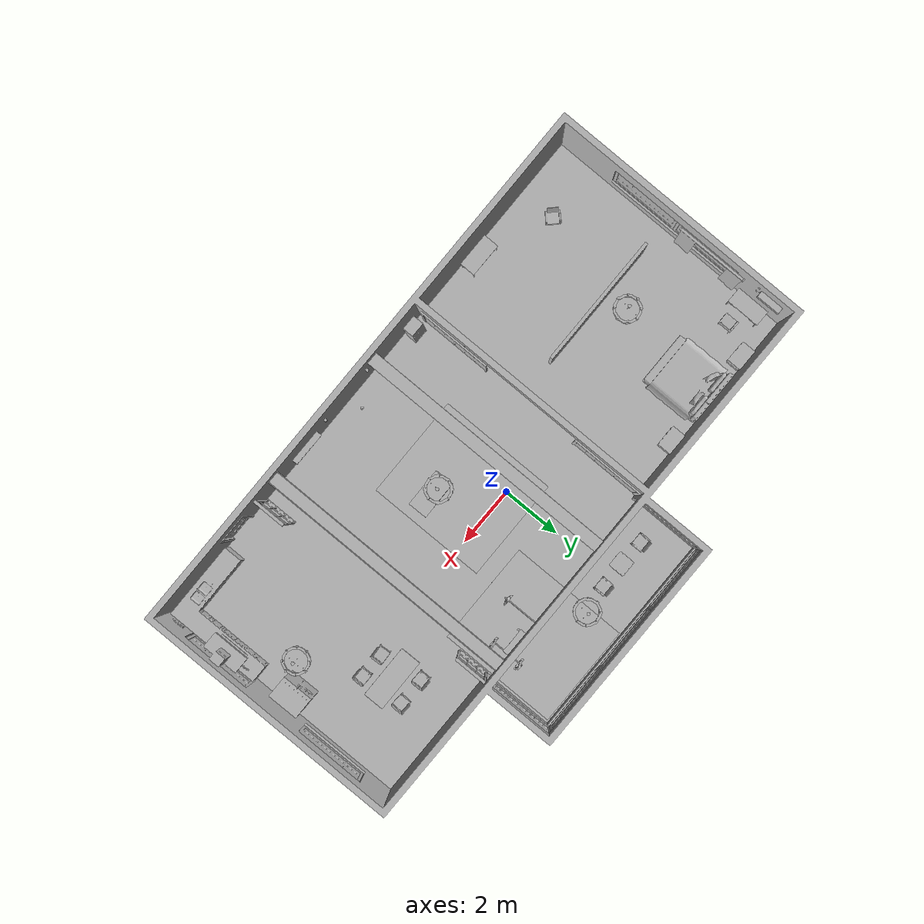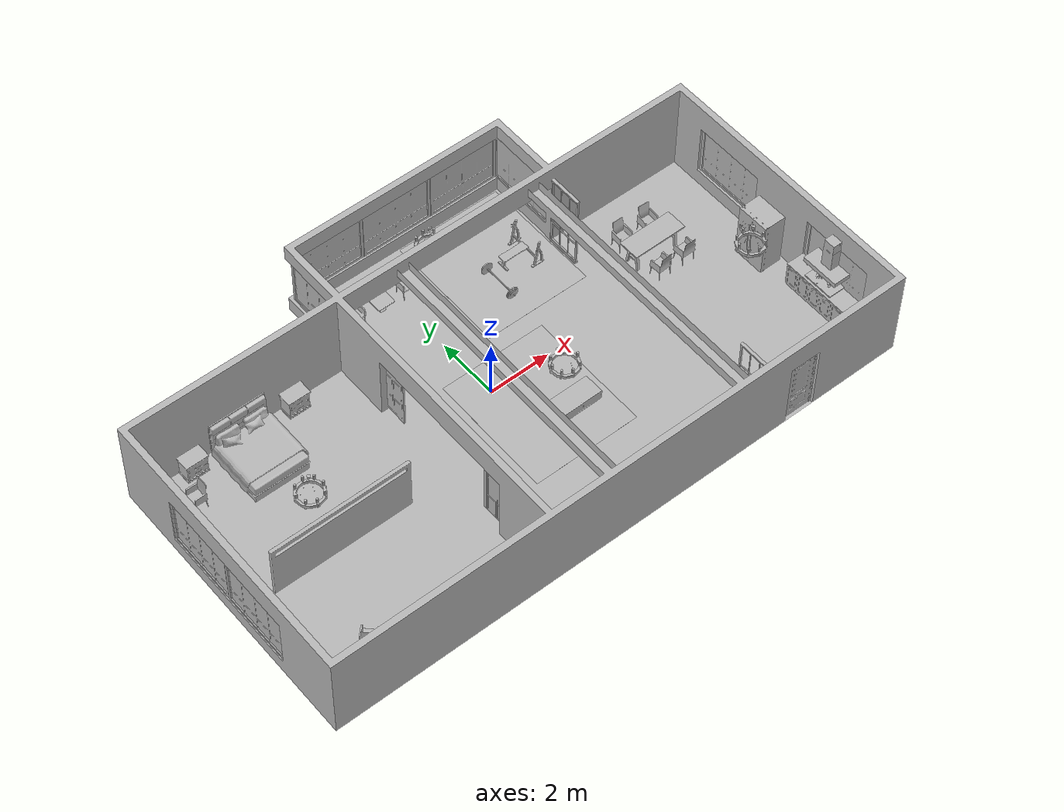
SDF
<sdf version="1.6">
 <world name="default">
  <gravity>0 0 -9.8</gravity>
  <magnetic_field>6e-06 2.3e-05 -4.2e-05</magnetic_field>
  <atmosphere type="adiabatic"/>
  <physics name="default_physics" default="0" type="ode">
   <max_step_size>0.001</max_step_size>
   <real_time_factor>1</real_time_factor>
   <real_time_update_rate>1000</real_time_update_rate>
  </physics>
  <scene>
   <ambient>0.4 0.4 0.4 1</ambient>
   <background>0.7 0.7 0.7 1</background>
   <shadows>0</shadows>
   <grid>0</grid>
   <origin_visual>0</origin_visual>
  </scene>
  <spherical_coordinates>
   <surface_model>EARTH_WGS84</surface_model>
   <latitude_deg>0</latitude_deg>
   <longitude_deg>0</longitude_deg>
   <elevation>0</elevation>
   <heading_deg>0</heading_deg>
  </spherical_coordinates>
  <model name="AirconditionerA_01_001">
   <static>1</static>
   <link name="AirconditionerA_01::link">
    <inertial><mass>1</mass></inertial>
    <collision name="collision">
     <geometry>
      <mesh><uri>model://AirconditionerA_01/meshes/AirconditionerA_01_collision.DAE</uri><scale>1 1 1</scale></mesh>
     </geometry>
    </collision>
    <visual name="visual">
     <geometry><mesh><uri>model://AirconditionerA_01/meshes/AirconditionerA_01_visual.DAE</uri></mesh></geometry>
     <meta><layer>1</layer></meta>
    </visual>
   </link>
   <static>1</static>
   <pose>-9.19941 2.41123 2.08454 0 -0 0</pose>
  </model>
  <model name="AirconditionerB_01_001">
   <static>1</static>
   <link name="AirconditionerB_01::link">
    <inertial><mass>1</mass></inertial>
    <collision name="collision">
     <geometry>
      <mesh><uri>model://AirconditionerB_01/meshes/AirconditionerB_01_collision.DAE</uri><scale>1 1 1</scale></mesh>
     </geometry>
    </collision>
    <visual name="visual">
     <geometry><mesh><uri>model://AirconditionerB_01/meshes/AirconditionerB_01_visual.DAE</uri></mesh></geometry>
     <meta><layer>1</layer></meta>
    </visual>
   </link>
   <pose>-2.00466 -5.22661 0.003485 0 -0 0</pose>
  </model>
  <model name="Bed_01_001">
   <static>1</static>
   <link name="Bed_01::link">
    <inertial><mass>22.6</mass></inertial>
    <collision name="collision">
     <geometry><mesh><uri>model://Bed_01/meshes/Bed_01_collision.DAE</uri><scale>1 1 1</scale></mesh></geometry>
    </collision>
    <visual name="visual">
     <geometry><mesh><uri>model://Bed_01/meshes/Bed_01_visual.DAE</uri></mesh></geometry>
     <meta><layer>1</layer></meta>
    </visual>
   </link>
   <static>1</static>
   <pose>-6.16507 2.03056 -1e-05 0 -0 0</pose>
  </model>
  <model name="NightStand_01_001">
   <static>1</static>
   <link name="NightStand_01::link">
    <inertial>
     <mass>13.6</mass>
     <inertia><ixx>0.6165</ixx><ixy>0</ixy><ixz>0</ixz><iyy>1.29664</iyy><iyz>0</iyz><izz>0.7706</izz></inertia>
    </inertial>
    <collision name="collision">
     <geometry>
      <mesh><uri>model://NightStand_01/meshes/NightStand_01_collision.DAE</uri><scale>1 1 1</scale></mesh>
     </geometry>
    </collision>
    <visual name="visual">
     <geometry><mesh><uri>model://NightStand_01/meshes/NightStand_01_visual.DAE</uri></mesh></geometry>
     <meta><layer>1</layer></meta>
    </visual>
   </link>
   <static>1</static>
   <pose>-7.72551 2.86042 0.005258 -2e-06 0 0</pose>
  </model>
  <model name="NightStand_01_002">
   <static>1</static>
   <link name="NightStand_01::link">
    <inertial>
     <mass>13.6</mass>
     <inertia><ixx>0.6165</ixx><ixy>0</ixy><ixz>0</ixz><iyy>1.29664</iyy><iyz>0</iyz><izz>0.7706</izz></inertia>
    </inertial>
    <collision name="collision">
     <geometry>
      <mesh><uri>model://NightStand_01/meshes/NightStand_01_collision.DAE</uri><scale>1 1 1</scale></mesh>
     </geometry>
    </collision>
    <visual name="visual">
     <geometry><mesh><uri>model://NightStand_01/meshes/NightStand_01_visual.DAE</uri></mesh></geometry>
     <meta><layer>1</layer></meta>
    </visual>
   </link>
   <static>1</static>
   <pose>-4.40734 2.86042 0.005256 0 2e-06 0</pose>
  </model>
  <model name="Board_01_001">
   <static>1</static>
   <link name="Board_01::link">
    <inertial><mass>1</mass></inertial>
    <collision name="collision">
     <geometry>
      <mesh><uri>model://Board_01/meshes/Board_01_collision.DAE</uri><scale>1 1 1</scale></mesh>
     </geometry>
    </collision>
    <visual name="visual">
     <geometry><mesh><uri>model://Board_01/meshes/Board_01_visual.DAE</uri></mesh></geometry>
     <meta><layer>2</layer></meta>
    </visual>
   </link>
   <static>1</static>
   <pose>2.77907 -5.3927 1.53817 0 -0 0</pose>
  </model>
  <model name="ChairA_01_001">
   <static>1</static>
   <link name="ChairA_01::link">
    <inertial>
     <mass>7.5</mass>
     <inertia><ixy>0</ixy><ixz>0</ixz><iyz>0</iyz><ixx>0.217</ixx><iyy>0.217</iyy><izz>0.067</izz></inertia>
    </inertial>
    <collision name="collision">
     <geometry>
      <mesh><uri>model://ChairA_01/meshes/ChairA_01_collision.DAE</uri><scale>1 1 1</scale></mesh>
     </geometry>
    </collision>
    <visual name="visual">
     <geometry><mesh><uri>model://ChairA_01/meshes/ChairA_01_visual.DAE</uri></mesh></geometry>
     <meta><layer>1</layer></meta>
    </visual>
   </link>
   <pose>7.11516 0.209028 0.024685 1e-06 -0 -1.55607</pose>
  </model>
  <model name="ChairA_01_002">
   <static>1</static>
   <link name="ChairA_01::link">
    <inertial>
     <mass>7.5</mass>
     <inertia><ixy>0</ixy><ixz>0</ixz><iyz>0</iyz><ixx>0.217</ixx><iyy>0.217</iyy><izz>0.067</izz></inertia>
    </inertial>
    <collision name="collision">
     <geometry>
      <mesh><uri>model://ChairA_01/meshes/ChairA_01_collision.DAE</uri><scale>1 1 1</scale></mesh>
     </geometry>
    </collision>
    <visual name="visual">
     <geometry><mesh><uri>model://ChairA_01/meshes/ChairA_01_visual.DAE</uri></mesh></geometry>
     <meta><layer>1</layer></meta>
    </visual>
   </link>
   <pose>6.25506 0.219468 0.011308 0 0 -1.50414</pose>
  </model>
  <model name="ChairA_01_003">
   <static>1</static>
   <link name="ChairA_01::link">
    <inertial>
     <mass>7.5</mass>
     <inertia><ixy>0</ixy><ixz>0</ixz><iyz>0</iyz><ixx>0.217</ixx><iyy>0.217</iyy><izz>0.067</izz></inertia>
    </inertial>
    <collision name="collision">
     <geometry>
      <mesh><uri>model://ChairA_01/meshes/ChairA_01_collision.DAE</uri><scale>1 1 1</scale></mesh>
     </geometry>
    </collision>
    <visual name="visual">
     <geometry><mesh><uri>model://ChairA_01/meshes/ChairA_01_visual.DAE</uri></mesh></geometry>
     <meta><layer>1</layer></meta>
    </visual>
   </link>
   <pose>6.06678 1.68075 0.01 0 -0 1.56986</pose>
  </model>
  <model name="ChairA_01_004">
   <static>1</static>
   <link name="ChairA_01::link">
    <inertial>
     <mass>7.5</mass>
     <inertia><ixy>0</ixy><ixz>0</ixz><iyz>0</iyz><ixx>0.217</ixx><iyy>0.217</iyy><izz>0.067</izz></inertia>
    </inertial>
    <collision name="collision">
     <geometry>
      <mesh><uri>model://ChairA_01/meshes/ChairA_01_collision.DAE</uri><scale>1 1 1</scale></mesh>
     </geometry>
    </collision>
    <visual name="visual">
     <geometry><mesh><uri>model://ChairA_01/meshes/ChairA_01_visual.DAE</uri></mesh></geometry>
     <meta><layer>1</layer></meta>
    </visual>
   </link>
   <pose>7.00277 1.67074 0 0 -0 1.52363</pose>
  </model>
  <model name="ChairA_01_005">
   <static>1</static>
   <link name="ChairA_01::link">
    <inertial>
     <mass>7.5</mass>
     <inertia><ixy>0</ixy><ixz>0</ixz><iyz>0</iyz><ixx>0.217</ixx><iyy>0.217</iyy><izz>0.067</izz></inertia>
    </inertial>
    <collision name="collision">
     <geometry>
      <mesh><uri>model://ChairA_01/meshes/ChairA_01_collision.DAE</uri><scale>1 1 1</scale></mesh>
     </geometry>
    </collision>
    <visual name="visual">
     <geometry><mesh><uri>model://ChairA_01/meshes/ChairA_01_visual.DAE</uri></mesh></geometry>
     <meta><layer>1</layer></meta>
    </visual>
   </link>
   <pose>-8.27094 1.91665 0.03665 0 -0 0</pose>
  </model>
  <model name="Chandelier_01_001">
   <static>1</static>
   <link name="Chandelier_01::link">
    <inertial><mass>1</mass></inertial>
    <collision name="collision">
     <geometry>
      <mesh><uri>model://Chandelier_01/meshes/Chandelier_01_collision.DAE</uri><scale>1 1 1</scale></mesh>
     </geometry>
    </collision>
    <visual name="visual">
     <geometry><mesh><uri>model://Chandelier_01/meshes/Chandelier_01_visual.DAE</uri></mesh></geometry>
     <meta><layer>2</layer></meta>
    </visual>
   </link>
   <static>1</static>
   <pose>1.22106 4.15574 1.295 0 -0 0</pose>
  </model>
  <model name="Chandelier_01_002">
   <static>1</static>
   <link name="Chandelier_01::link">
    <inertial><mass>1</mass></inertial>
    <collision name="collision">
     <geometry>
      <mesh><uri>model://Chandelier_01/meshes/Chandelier_01_collision.DAE</uri><scale>1 1 1</scale></mesh>
     </geometry>
    </collision>
    <visual name="visual">
     <geometry><mesh><uri>model://Chandelier_01/meshes/Chandelier_01_visual.DAE</uri></mesh></geometry>
     <meta><layer>2</layer></meta>
    </visual>
   </link>
   <static>1</static>
   <pose>-6.45106 -0.69204 1.81 0 -0 0</pose>
  </model>
  <model name="Chandelier_01_003">
   <static>1</static>
   <link name="Chandelier_01::link">
    <inertial><mass>1</mass></inertial>
    <collision name="collision">
     <geometry>
      <mesh><uri>model://Chandelier_01/meshes/Chandelier_01_collision.DAE</uri><scale>1 1 1</scale></mesh>
     </geometry>
    </collision>
    <visual name="visual">
     <geometry><mesh><uri>model://Chandelier_01/meshes/Chandelier_01_visual.DAE</uri></mesh></geometry>
     <meta><layer>2</layer></meta>
    </visual>
   </link>
   <static>1</static>
   <pose>7.82406 -1.59 1.751 0 -0 0</pose>
  </model>
  <model name="Chandelier_01_004">
   <static>1</static>
   <link name="Chandelier_01::link">
    <inertial><mass>1</mass></inertial>
    <collision name="collision">
     <geometry>
      <mesh><uri>model://Chandelier_01/meshes/Chandelier_01_collision.DAE</uri><scale>1 1 1</scale></mesh>
     </geometry>
    </collision>
    <visual name="visual">
     <geometry><mesh><uri>model://Chandelier_01/meshes/Chandelier_01_visual.DAE</uri></mesh></geometry>
     <meta><layer>2</layer></meta>
    </visual>
   </link>
   <static>1</static>
   <pose>1.22106 -1.59204 1.7873 0 -0 0</pose>
  </model>
  <model name="Carpet_01_001">
   <static>1</static>
   <link name="Carpet_01::link">
    <inertial><mass>8.1</mass></inertial>
    <collision name="collision">
     <geometry>
      <mesh><uri>model://Carpet_01/meshes/Carpet_01_collision.DAE</uri><scale>1 1 0.95</scale></mesh>
     </geometry>
     <pose>0 0 -0.01 0 -0 0</pose>
    </collision>
    <visual name="visual">
     <geometry><mesh><uri>model://Carpet_01/meshes/Carpet_01_visual.DAE</uri></mesh></geometry>
     <meta><layer>1</layer></meta>
    </visual>
   </link>
   <static>1</static>
   <pose>0.78505 -1.10665 0.001106 0 -0 0</pose>
  </model>
  <model name="Carpet_01_002">
   <static>1</static>
   <link name="Carpet_01::link">
    <inertial><mass>8.1</mass></inertial>
    <collision name="collision">
     <geometry>
      <mesh><uri>model://Carpet_01/meshes/Carpet_01_collision.DAE</uri><scale>1 1 0.95</scale></mesh>
     </geometry>
     <pose>0 0 -0.01 0 -0 0</pose>
    </collision>
    <visual name="visual">
     <geometry><mesh><uri>model://Carpet_01/meshes/Carpet_01_visual.DAE</uri></mesh></geometry>
     <meta><layer>1</layer></meta>
    </visual>
   </link>
   <static>1</static>
   <pose>2.85405 3.45 0.000585 0 -0 0</pose>
  </model>
  <model name="SecurityCamera_01_001">
   <static>1</static>
   <link name="SecurityCamera_01::link">
    <inertial>
     <mass>1</mass>
     <inertia>
      <ixx>18.2222</ixx>
      <ixy>0</ixy>
      <ixz>0</ixz>
      <iyy>18.2222</iyy>
      <iyz>0</iyz>
      <izz>0.0018767</izz>
     </inertia>
    </inertial>
    <collision name="collision">
     <geometry>
      <mesh><uri>model://SecurityCamera_01/meshes/SecurityCamera_01_collision.DAE</uri><scale>1 1 1</scale></mesh>
     </geometry>
    </collision>
    <visual name="visual">
     <geometry><mesh><uri>model://SecurityCamera_01/meshes/SecurityCamera_01_visual.DAE</uri></mesh></geometry>
     <meta><layer>2</layer></meta>
    </visual>
   </link>
   <pose>0.842134 -4.99629 0.495067 0 0 -2.84104</pose>
  </model>
  <model name="CoffeeTable_01_001">
   <static>1</static>
   <link name="CoffeeTable_01::link">
    <inertial>
     <mass>21.7</mass>
     <inertia><ixx>0.81375</ixx><ixy>0</ixy><ixz>0</ixz><iyy>2.76675</iyy><iyz>0</iyz><izz>3.254</izz></inertia>
    </inertial>
    <collision name="collision">
     <geometry>
      <mesh><uri>model://CoffeeTable_01/meshes/CoffeeTable_01_collision.DAE</uri><scale>1 1 1</scale></mesh>
     </geometry>
     <surface><contact><ode><max_vel>0.01</max_vel></ode></contact></surface>
    </collision>
    <visual name="visual">
     <geometry><mesh><uri>model://CoffeeTable_01/meshes/CoffeeTable_01_visual.DAE</uri></mesh></geometry>
     <meta><layer>1</layer></meta>
    </visual>
   </link>
   <static>1</static>
   <pose>1.5123 -1.73344 0.041983 0 -0 0.01</pose>
  </model>
  <model name="CookingBench_01_001">
   <link name="CookingBench_01::link">
    <inertial><mass>1</mass></inertial>
    <collision name="collision">
     <geometry>
      <mesh><uri>model://CookingBench_01/meshes/CookingBench_01_collision.DAE</uri><scale>1 1 1</scale></mesh>
     </geometry>
    </collision>
    <visual name="visual">
     <geometry><mesh><uri>model://CookingBench_01/meshes/CookingBench_01_visual.DAE</uri></mesh></geometry>
     <meta><layer>1</layer></meta>
    </visual>
   </link>
   <pose>9.03838 -3.35114 0.90361 0 -0 3.13713</pose>
   <static>1</static>
  </model>
  <model name="Curtain_01_001">
   <static>1</static>
   <link name="Curtain_01::link">
    <inertial><mass>1</mass></inertial>
    <collision name="collision">
     <geometry>
      <mesh><uri>model://Curtain_01/meshes/Curtain_01_collision.DAE</uri><scale>1 1 1</scale></mesh>
     </geometry>
    </collision>
    <visual name="visual">
     <geometry><mesh><uri>model://Curtain_01/meshes/Curtain_01_visual.DAE</uri></mesh></geometry>
     <meta><layer>2</layer></meta>
    </visual>
   </link>
   <static>1</static>
   <pose>-9.17264 0.20376 0 0 -0 0</pose>
  </model>
  <model name="KitchenTable_01_001">
   <static>1</static>
   <link name="KitchenTable_01::link">
    <inertial><mass>12.3</mass></inertial>
    <collision name="collision">
     <geometry>
      <mesh><uri>model://KitchenTable_01/meshes/KitchenTable_01_collision.DAE</uri><scale>1 1 1</scale></mesh>
     </geometry>
    </collision>
    <visual name="visual">
     <geometry><mesh><uri>model://KitchenTable_01/meshes/KitchenTable_01_visual.DAE</uri></mesh></geometry>
     <meta><layer>1</layer></meta>
    </visual>
   </link>
   <pose>6.55269 0.951173 -6e-06 0 0 -1.56413</pose>
  </model>
  <model name="ReadingDesk_01_001">
   <static>1</static>
   <link name="ReadingDesk_01::link">
    <inertial>
     <mass>14.6</mass>
     <inertia><ixx>0.78</ixx><ixy>0</ixy><ixz>0</ixz><iyy>0.273</iyy><iyz>0</iyz><izz>0.57375</izz></inertia>
    </inertial>
    <collision name="collision">
     <geometry>
      <mesh><uri>model://ReadingDesk_01/meshes/ReadingDesk_01_collision.DAE</uri><scale>1 1 1</scale></mesh>
     </geometry>
    </collision>
    <visual name="visual">
     <geometry><mesh><uri>model://ReadingDesk_01/meshes/ReadingDesk_01_visual.DAE</uri></mesh></geometry>
     <meta><layer>1</layer></meta>
    </visual>
   </link>
   <pose>-8.98726 2.05706 0 0 0 -0.004638</pose>
  </model>
  <model name="BalconyTable_01_001">
   <static>1</static>
   <link name="BalconyTable_01::link">
    <inertial><mass>15</mass></inertial>
    <collision name="collision">
     <geometry>
      <mesh><uri>model://BalconyTable_01/meshes/BalconyTable_01_collision.DAE</uri><scale>1 1 1</scale></mesh>
     </geometry>
    </collision>
    <visual name="visual">
     <geometry><mesh><uri>model://BalconyTable_01/meshes/BalconyTable_01_visual.DAE</uri></mesh></geometry>
     <meta><layer>1</layer></meta>
    </visual>
   </link>
   <pose>-0.55624 4.11124 0 0 -0 0</pose>
  </model>
  <model name="Door_01_001">
   <static>1</static>
   <link name="Door_01::link">
    <inertial><mass>1</mass></inertial>
    <collision name="collision">
     <geometry><mesh><uri>model://Door_01/meshes/Door_01_collision.DAE</uri><scale>1 1 1</scale></mesh></geometry>
    </collision>
    <visual name="visual">
     <geometry><mesh><uri>model://Door_01/meshes/Door_01_visual.DAE</uri></mesh></geometry>
     <meta><layer>2</layer></meta>
    </visual>
   </link>
   <static>1</static>
   <pose>6.00145 -5.549 0 0 -0 0</pose>
  </model>
  <model name="Dumbbell_01_001">
   <static>1</static>
   <link name="Dumbbell_01::link">
    <inertial>
     <mass>80</mass>
     <inertia><ixx>14.601</ixx><ixy>0</ixy><ixz>0</ixz><iyy>0</iyy><iyz>0</iyz><izz>14.601</izz></inertia>
    </inertial>
    <collision name="collision">
     <geometry>
      <mesh><uri>model://Dumbbell_01/meshes/Dumbbell_01_collision.DAE</uri><scale>1 1 1</scale></mesh>
     </geometry>
    </collision>
    <visual name="visual">
     <geometry><mesh><uri>model://Dumbbell_01/meshes/Dumbbell_01_visual.DAE</uri></mesh></geometry>
     <meta><layer>1</layer></meta>
    </visual>
   </link>
   <static>1</static>
   <pose>2.51285 2.71779 0.002183 0 -0 0</pose>
  </model>
  <model name="FitnessEquipment_01_001">
   <static>1</static>
   <link name="FitnessEquipment_01::link">
    <inertial><mass>80</mass></inertial>
    <collision name="collision">
     <geometry>
      <mesh>
       <uri>model://FitnessEquipment_01/meshes/FitnessEquipment_01_collision.DAE</uri>
       <scale>1 1 1</scale>
      </mesh>
     </geometry>
    </collision>
    <visual name="visual">
     <geometry><mesh><uri>model://FitnessEquipment_01/meshes/FitnessEquipment_01_visual.DAE</uri></mesh></geometry>
     <meta><layer>1</layer></meta>
    </visual>
   </link>
   <static>1</static>
   <pose>3.48472 3.1691 0.003168 0 -0 0</pose>
  </model>
  <model name="FoldingDoor_01_001">
   <static>1</static>
   <link name="FoldingDoor_01::link">
    <inertial><mass>1</mass></inertial>
    <collision name="collision">
     <geometry>
      <mesh><uri>model://FoldingDoor_01/meshes/FoldingDoor_01_collision.DAE</uri><scale>1 1 1</scale></mesh>
     </geometry>
    </collision>
    <visual name="visual">
     <geometry><mesh><uri>model://FoldingDoor_01/meshes/FoldingDoor_01_visual.DAE</uri></mesh></geometry>
     <meta><layer>2</layer></meta>
    </visual>
   </link>
   <static>1</static>
   <pose>-2.4611 1.84422 0.041881 0 -0 0</pose>
  </model>
  <model name="FoldingDoor_01_002">
   <static>1</static>
   <link name="FoldingDoor_01::link">
    <inertial><mass>1</mass></inertial>
    <collision name="collision">
     <geometry>
      <mesh><uri>model://FoldingDoor_01/meshes/FoldingDoor_01_collision.DAE</uri><scale>1 1 1</scale></mesh>
     </geometry>
    </collision>
    <visual name="visual">
     <geometry><mesh><uri>model://FoldingDoor_01/meshes/FoldingDoor_01_visual.DAE</uri></mesh></geometry>
     <meta><layer>2</layer></meta>
    </visual>
   </link>
   <static>1</static>
   <pose>-2.4611 -4.05332 0.041881 0 -0 0</pose>
  </model>
  <model name="Handle_01_001">
   <static>1</static>
   <link name="Handle_01::link">
    <inertial><mass>1</mass></inertial>
    <collision name="collision">
     <geometry>
      <mesh><uri>model://Handle_01/meshes/Handle_01_collision.DAE</uri><scale>1 1 1</scale></mesh>
     </geometry>
    </collision>
    <visual name="visual">
     <geometry><mesh><uri>model://Handle_01/meshes/Handle_01_visual.DAE</uri></mesh></geometry>
     <meta><layer>2</layer></meta>
    </visual>
   </link>
   <static>1</static>
   <pose>5.724 -5.523 0.9938 0 0 -3.1415</pose>
  </model>
  <model name="HouseWallB_01_001">
   <static>1</static>
   <link name="HouseWallB_01::link">
    <inertial><mass>1</mass></inertial>
    <collision name="collision">
     <geometry>
      <mesh><uri>model://HouseWallB_01/meshes/HouseWallB_01_collision.DAE</uri><scale>1 1 1</scale></mesh>
     </geometry>
    </collision>
    <visual name="visual">
     <geometry><mesh><uri>model://HouseWallB_01/meshes/HouseWallB_01_visual.DAE</uri></mesh></geometry>
     <meta><layer>2</layer></meta>
    </visual>
   </link>
   <static>1</static>
  </model>
  <model name="FloorB_01_001">
   <static>1</static>
   <link name="FloorB_01::link">
    <inertial><mass>100</mass></inertial>
    <collision name="collision">
     <geometry>
      <mesh><uri>model://FloorB_01/meshes/FloorB_01_collision.DAE</uri><scale>1 1 0.9</scale></mesh>
     </geometry>
     <surface><friction><ode><mu>0.6</mu><mu2>0.6</mu2></ode></friction></surface>
    </collision>
    <visual name="visual">
     <geometry><mesh><uri>model://FloorB_01/meshes/FloorB_01_visual.DAE</uri></mesh></geometry>
     <meta><layer>1</layer></meta>
    </visual>
   </link>
   <static>1</static>
  </model>
  <model name="FoldingDoor_02_001">
   <static>1</static>
   <link name="FoldingDoor_02::link">
    <inertial><mass>1</mass></inertial>
    <collision name="collision">
     <geometry>
      <mesh><uri>model://FoldingDoor_02/meshes/FoldingDoor_02_collision.DAE</uri><scale>1 1 1</scale></mesh>
     </geometry>
    </collision>
    <visual name="visual">
     <geometry><mesh><uri>model://FoldingDoor_02/meshes/FoldingDoor_02_visual.DAE</uri></mesh></geometry>
     <meta><layer>2</layer></meta>
    </visual>
   </link>
   <static>1</static>
   <pose>4.67423 2.46451 0 0 -0 3.14159</pose>
  </model>
  <model name="FoldingDoor_02_002">
   <static>1</static>
   <link name="FoldingDoor_02::link">
    <inertial><mass>1</mass></inertial>
    <collision name="collision">
     <geometry>
      <mesh><uri>model://FoldingDoor_02/meshes/FoldingDoor_02_collision.DAE</uri><scale>1 1 1</scale></mesh>
     </geometry>
    </collision>
    <visual name="visual">
     <geometry><mesh><uri>model://FoldingDoor_02/meshes/FoldingDoor_02_visual.DAE</uri></mesh></geometry>
     <meta><layer>2</layer></meta>
    </visual>
   </link>
   <static>1</static>
   <pose>4.8912 -4.84968 0 0 -0 0</pose>
  </model>
  <model name="KitchenCabinet_01_001">
   <static>1</static>
   <link name="KitchenCabinet_01::link">
    <inertial><mass>1</mass></inertial>
    <collision name="collision">
     <geometry>
      <mesh><uri>model://KitchenCabinet_01/meshes/KitchenCabinet_01_collision.DAE</uri><scale>1 1 1</scale></mesh>
     </geometry>
    </collision>
    <visual name="visual">
     <geometry><mesh><uri>model://KitchenCabinet_01/meshes/KitchenCabinet_01_visual.DAE</uri></mesh></geometry>
     <meta><layer>1</layer></meta>
    </visual>
   </link>
   <static>1</static>
   <pose>8.00201 -3.83651 0.012068 0 0 -3.14</pose>
  </model>
  <model name="KitchenUtensils_01_001">
   <static>1</static>
   <link name="KitchenUtensils_01::link">
    <inertial><mass>1</mass></inertial>
    <collision name="collision">
     <geometry>
      <mesh><uri>model://KitchenUtensils_01/meshes/KitchenUtensils_01_collision.DAE</uri><scale>1 1 1</scale></mesh>
     </geometry>
    </collision>
    <visual name="visual">
     <geometry><mesh><uri>model://KitchenUtensils_01/meshes/KitchenUtensils_01_visual.DAE</uri></mesh></geometry>
     <meta><layer>1</layer></meta>
    </visual>
   </link>
   <static>1</static>
   <pose>9.28548 -5.02126 1.1418 0 -0 0</pose>
  </model>
  <model name="LightC_01_001">
   <static>1</static>
   <link name="LightC_01::link">
    <inertial><mass>1</mass></inertial>
    <collision name="collision">
     <geometry>
      <mesh><uri>model://LightC_01/meshes/LightC_01_collision.DAE</uri><scale>1 1 1</scale></mesh>
     </geometry>
    </collision>
    <visual name="visual">
     <geometry><mesh><uri>model://LightC_01/meshes/LightC_01_visual.DAE</uri></mesh></geometry>
     <meta><layer>2</layer></meta>
    </visual>
   </link>
   <static>1</static>
   <pose>1.76957 -5.44437 2 0 -0 0</pose>
  </model>
  <model name="LightC_01_002">
   <static>1</static>
   <link name="LightC_01::link">
    <inertial><mass>1</mass></inertial>
    <collision name="collision">
     <geometry>
      <mesh><uri>model://LightC_01/meshes/LightC_01_collision.DAE</uri><scale>1 1 1</scale></mesh>
     </geometry>
    </collision>
    <visual name="visual">
     <geometry><mesh><uri>model://LightC_01/meshes/LightC_01_visual.DAE</uri></mesh></geometry>
     <meta><layer>2</layer></meta>
    </visual>
   </link>
   <static>1</static>
   <pose>-0.138245 -5.44437 2 0 -0 0</pose>
  </model>
  <model name="Rangehood_01_001">
   <static>1</static>
   <link name="Rangehood_01::link">
    <inertial><mass>1</mass></inertial>
    <collision name="collision">
     <geometry>
      <mesh><uri>model://Rangehood_01/meshes/Rangehood_01_collision.DAE</uri><scale>1 1 1</scale></mesh>
     </geometry>
    </collision>
    <visual name="visual">
     <geometry><mesh><uri>model://Rangehood_01/meshes/Rangehood_01_visual.DAE</uri></mesh></geometry>
     <meta><layer>2</layer></meta>
    </visual>
   </link>
   <static>1</static>
   <pose>9.01979 -3.36994 1.50761 0 -0 0</pose>
  </model>
  <model name="Refrigerator_01_001">
   <static>1</static>
   <link name="Refrigerator_01::link">
    <inertial><mass>1</mass></inertial>
    <collision name="collision">
     <geometry>
      <mesh><uri>model://Refrigerator_01/meshes/Refrigerator_01_collision.DAE</uri><scale>1 1 1</scale></mesh>
     </geometry>
    </collision>
    <visual name="visual">
     <geometry><mesh><uri>model://Refrigerator_01/meshes/Refrigerator_01_visual.DAE</uri></mesh></geometry>
     <meta><layer>1</layer></meta>
    </visual>
   </link>
   <static>1</static>
   <pose>8.70273 -1.03203 0 0 0 -1.5635</pose>
  </model>
  <model name="SeasoningBox_01_001">
   <static>1</static>
   <link name="SeasoningBox_01::link">
    <inertial><mass>1</mass></inertial>
    <collision name="collision">
     <geometry>
      <mesh><uri>model://SeasoningBox_01/meshes/SeasoningBox_01_collision.DAE</uri><scale>1 1 1</scale></mesh>
     </geometry>
    </collision>
    <visual name="visual">
     <geometry><mesh><uri>model://SeasoningBox_01/meshes/SeasoningBox_01_visual.DAE</uri></mesh></geometry>
     <meta><layer>1</layer></meta>
    </visual>
   </link>
   <pose>9.10797 -2.65173 0.902458 -6e-06 3.4e-05 0.00129</pose>
  </model>
  <model name="RoomWall_01_001">
   <static>1</static>
   <link name="RoomWall_01::link">
    <inertial><mass>100</mass></inertial>
    <collision name="collision">
     <geometry>
      <mesh><uri>model://RoomWall_01/meshes/RoomWall_01_collision.DAE</uri><scale>1 1 1</scale></mesh>
     </geometry>
    </collision>
    <visual name="visual">
     <geometry><mesh><uri>model://RoomWall_01/meshes/RoomWall_01_visual.DAE</uri></mesh></geometry>
     <meta><layer>2</layer></meta>
    </visual>
   </link>
   <static>1</static>
   <pose>-6.09755 -1.49618 0.028124 0 -0 0</pose>
  </model>
  <model name="RoomWindow_01_001">
   <static>1</static>
   <link name="RoomWindow_01::link">
    <inertial><mass>1</mass></inertial>
    <collision name="collision">
     <geometry>
      <mesh><uri>model://RoomWindow_01/meshes/RoomWindow_01_collision.DAE</uri><scale>1 1 1</scale></mesh>
     </geometry>
    </collision>
    <visual name="visual">
     <geometry><mesh><uri>model://RoomWindow_01/meshes/RoomWindow_01_visual.DAE</uri></mesh></geometry>
     <meta><layer>2</layer></meta>
    </visual>
   </link>
   <static>1</static>
   <pose>-9.4186 -0.026285 0.502739 0 -0 0</pose>
  </model>
  <model name="RoomWindow_01_002">
   <static>1</static>
   <link name="RoomWindow_01::link">
    <inertial><mass>1</mass></inertial>
    <collision name="collision">
     <geometry>
      <mesh><uri>model://RoomWindow_01/meshes/RoomWindow_01_collision.DAE</uri><scale>1 1 1</scale></mesh>
     </geometry>
    </collision>
    <visual name="visual">
     <geometry><mesh><uri>model://RoomWindow_01/meshes/RoomWindow_01_visual.DAE</uri></mesh></geometry>
     <meta><layer>2</layer></meta>
    </visual>
   </link>
   <static>1</static>
   <pose>-9.4186 -2.37409 0.502739 0 -0 0</pose>
  </model>
  <model name="RoomWindow_01_003">
   <static>1</static>
   <link name="RoomWindow_01::link">
    <inertial><mass>1</mass></inertial>
    <collision name="collision">
     <geometry>
      <mesh><uri>model://RoomWindow_01/meshes/RoomWindow_01_collision.DAE</uri><scale>1 1 1</scale></mesh>
     </geometry>
    </collision>
    <visual name="visual">
     <geometry><mesh><uri>model://RoomWindow_01/meshes/RoomWindow_01_visual.DAE</uri></mesh></geometry>
     <meta><layer>2</layer></meta>
    </visual>
   </link>
   <static>1</static>
   <pose>9.42262 -3.37398 0.502739 0 0 -3.1361</pose>
  </model>
  <model name="RoomWindow_01_004">
   <static>1</static>
   <link name="RoomWindow_01::link">
    <inertial><mass>1</mass></inertial>
    <collision name="collision">
     <geometry>
      <mesh><uri>model://RoomWindow_01/meshes/RoomWindow_01_collision.DAE</uri><scale>1 1 1</scale></mesh>
     </geometry>
    </collision>
    <visual name="visual">
     <geometry><mesh><uri>model://RoomWindow_01/meshes/RoomWindow_01_visual.DAE</uri></mesh></geometry>
     <meta><layer>2</layer></meta>
    </visual>
   </link>
   <static>1</static>
   <pose>9.42256 0.96852 0.496581 0 0 -3.1361</pose>
  </model>
  <model name="RoomWindow_01_005">
   <static>1</static>
   <link name="RoomWindow_01::link">
    <inertial><mass>1</mass></inertial>
    <collision name="collision">
     <geometry>
      <mesh><uri>model://RoomWindow_01/meshes/RoomWindow_01_collision.DAE</uri><scale>1 1 1</scale></mesh>
     </geometry>
    </collision>
    <visual name="visual">
     <geometry><mesh><uri>model://RoomWindow_01/meshes/RoomWindow_01_visual.DAE</uri></mesh></geometry>
     <meta><layer>2</layer></meta>
    </visual>
   </link>
   <static>1</static>
   <pose>4.72232 4.47028 0.502739 0 0 -3.1361</pose>
  </model>
  <model name="RoomWindow_01_006">
   <static>1</static>
   <link name="RoomWindow_01::link">
    <inertial><mass>1</mass></inertial>
    <collision name="collision">
     <geometry>
      <mesh><uri>model://RoomWindow_01/meshes/RoomWindow_01_collision.DAE</uri><scale>1 1 1</scale></mesh>
     </geometry>
    </collision>
    <visual name="visual">
     <geometry><mesh><uri>model://RoomWindow_01/meshes/RoomWindow_01_visual.DAE</uri></mesh></geometry>
     <meta><layer>2</layer></meta>
    </visual>
   </link>
   <static>1</static>
   <pose>3.48852 5.60069 0.502739 0 0 -1.56627</pose>
  </model>
  <model name="RoomWindow_01_007">
   <static>1</static>
   <link name="RoomWindow_01::link">
    <inertial><mass>1</mass></inertial>
    <collision name="collision">
     <geometry>
      <mesh><uri>model://RoomWindow_01/meshes/RoomWindow_01_collision.DAE</uri><scale>1 1 1</scale></mesh>
     </geometry>
    </collision>
    <visual name="visual">
     <geometry><mesh><uri>model://RoomWindow_01/meshes/RoomWindow_01_visual.DAE</uri></mesh></geometry>
     <meta><layer>2</layer></meta>
    </visual>
   </link>
   <static>1</static>
   <pose>1.14095 5.60069 0.502739 0 0 -1.56627</pose>
  </model>
  <model name="RoomWindow_01_008">
   <static>1</static>
   <link name="RoomWindow_01::link">
    <inertial><mass>1</mass></inertial>
    <collision name="collision">
     <geometry>
      <mesh><uri>model://RoomWindow_01/meshes/RoomWindow_01_collision.DAE</uri><scale>1 1 1</scale></mesh>
     </geometry>
    </collision>
    <visual name="visual">
     <geometry><mesh><uri>model://RoomWindow_01/meshes/RoomWindow_01_visual.DAE</uri></mesh></geometry>
     <meta><layer>2</layer></meta>
    </visual>
   </link>
   <static>1</static>
   <pose>-1.19934 5.60069 0.502739 0 0 -1.56627</pose>
  </model>
  <model name="RoomWindow_01_009">
   <static>1</static>
   <link name="RoomWindow_01::link">
    <inertial><mass>1</mass></inertial>
    <collision name="collision">
     <geometry>
      <mesh><uri>model://RoomWindow_01/meshes/RoomWindow_01_collision.DAE</uri><scale>1 1 1</scale></mesh>
     </geometry>
    </collision>
    <visual name="visual">
     <geometry><mesh><uri>model://RoomWindow_01/meshes/RoomWindow_01_visual.DAE</uri></mesh></geometry>
     <meta><layer>2</layer></meta>
    </visual>
   </link>
   <static>1</static>
   <pose>-2.39662 4.38761 0.502739 0 -0 0</pose>
  </model>
  <light name="LivingRoom_CeilingLight_0" type="point">
   <pose>1.1943 4.15576 2.2 0 -0 0</pose>
   <diffuse>0.5 0.5 0.5 1</diffuse>
   <specular>0.1 0.1 0.1 1</specular>
   <attenuation>
    <range>20</range>
    <constant>0.32</constant>
    <linear>0.01</linear>
    <quadratic>0.03</quadratic>
   </attenuation>
   <cast_shadows>0</cast_shadows>
   <direction>0 0 -1</direction>
  </light>
  <light name="LivingRoom_CeilingLight_1" type="point">
   <pose>1.1943 -1.58996 2.2 0 -0 0</pose>
   <diffuse>0.5 0.5 0.5 1</diffuse>
   <specular>0.1 0.1 0.1 1</specular>
   <attenuation>
    <range>20</range>
    <constant>0.05</constant>
    <linear>0.01</linear>
    <quadratic>0.09</quadratic>
   </attenuation>
   <cast_shadows>0</cast_shadows>
   <direction>0 0 -1</direction>
  </light>
  <light name="LivingRoom_WallLight_0" type="point">
   <pose>1.76956 -5.44437 2.2 0 -0 0</pose>
   <diffuse>0.24 0.24 0.24 1</diffuse>
   <specular>0.1 0.1 0.1 1</specular>
   <attenuation>
    <range>20</range>
    <constant>0.12</constant>
    <linear>0</linear>
    <quadratic>0.03</quadratic>
   </attenuation>
   <direction>0 0 -1</direction>
  </light>
  <light name="LivingRoom_WallLight_1" type="point">
   <pose>-0.13826 -5.44437 2.2 0 -0 0</pose>
   <diffuse>0.24 0.24 0.24 1</diffuse>
   <specular>0.1 0.1 0.1 1</specular>
   <attenuation>
    <range>20</range>
    <constant>0.12</constant>
    <linear>0</linear>
    <quadratic>0.03</quadratic>
   </attenuation>
   <direction>0 0 -1</direction>
  </light>
  <light name="TV_Light_0" type="point">
   <pose>0.8269 -4.93958 1.1 0 -0 0</pose>
   <diffuse>0.31372 0.31372 0.34901 1</diffuse>
   <specular>0.1 0.1 0.1 1</specular>
   <attenuation>
    <range>3</range>
    <constant>0.1</constant>
    <linear>0.04</linear>
    <quadratic>0.5</quadratic>
   </attenuation>
   <direction>0 0 -1</direction>
  </light>
  <light name="BedRoom_Portrait_Light_0" type="spot">
   <pose>-6.19038 -1.8297 1.5587 0.3 -0 0</pose>
   <diffuse>0.5 0.5 0.5 1</diffuse>
   <specular>0.1 0.1 0.1 1</specular>
   <attenuation>
    <range>20</range>
    <constant>0.5</constant>
    <linear>0.01</linear>
    <quadratic>0</quadratic>
   </attenuation>
   <spot><inner_angle>0.6</inner_angle><outer_angle>1</outer_angle><falloff>1</falloff></spot>
   <direction>0 0 -1</direction>
  </light>
  <light name="BedRoom_CeilingLight_0" type="point">
   <pose>-6.45106 -0.69204 2 0 -0 0</pose>
   <diffuse>0.5 0.5 0.5 1</diffuse>
   <specular>0.1 0.1 0.1 1</specular>
   <attenuation>
    <range>20</range>
    <constant>0.32</constant>
    <linear>0.01</linear>
    <quadratic>0.03</quadratic>
   </attenuation>
   <cast_shadows>0</cast_shadows>
   <direction>0 0 -1</direction>
  </light>
  <light name="Kitchen_CeilingLight_0" type="point">
   <pose>7.8582 -1.5905 2.28 0 -0 0</pose>
   <diffuse>0.5 0.5 0.5 1</diffuse>
   <specular>0.1 0.1 0.1 1</specular>
   <attenuation>
    <range>20</range>
    <constant>0.3</constant>
    <linear>0.01</linear>
    <quadratic>0.01</quadratic>
   </attenuation>
   <cast_shadows>0</cast_shadows>
   <direction>0 0 -1</direction>
  </light>
  <model name="ChairA_01_003_clone">
   <static>1</static>
   <link name="ChairA_01::link">
    <inertial>
     <mass>7.5</mass>
     <inertia><ixy>0</ixy><ixz>0</ixz><iyz>0</iyz><ixx>0.217</ixx><iyy>0.217</iyy><izz>0.067</izz></inertia>
    </inertial>
    <collision name="collision">
     <geometry>
      <mesh><uri>model://ChairA_01/meshes/ChairA_01_collision.DAE</uri><scale>1 1 1</scale></mesh>
     </geometry>
    </collision>
    <visual name="visual">
     <geometry><mesh><uri>model://ChairA_01/meshes/ChairA_01_visual.DAE</uri></mesh></geometry>
     <meta><layer>1</layer></meta>
    </visual>
   </link>
   <pose>-7.34382 -4.24718 0.01 0 -0 -2.35713</pose>
  </model>
  <model name="ChairA_01_003_clone_0">
   <static>1</static>
   <link name="ChairA_01::link">
    <inertial>
     <mass>7.5</mass>
     <inertia><ixy>0</ixy><ixz>0</ixz><iyz>0</iyz><ixx>0.217</ixx><iyy>0.217</iyy><izz>0.067</izz></inertia>
    </inertial>
    <collision name="collision">
     <geometry>
      <mesh><uri>model://ChairA_01/meshes/ChairA_01_collision.DAE</uri><scale>1 1 1</scale></mesh>
     </geometry>
    </collision>
    <visual name="visual">
     <geometry><mesh><uri>model://ChairA_01/meshes/ChairA_01_visual.DAE</uri></mesh></geometry>
     <meta><layer>1</layer></meta>
    </visual>
   </link>
   <pose>-1.43035 4.15853 0.01 0 -0 1.56986</pose>
  </model>
  <model name="ChairA_01_003_clone_1">
   <static>1</static>
   <link name="ChairA_01::link">
    <inertial>
     <mass>7.5</mass>
     <inertia><ixy>0</ixy><ixz>0</ixz><iyz>0</iyz><ixx>0.217</ixx><iyy>0.217</iyy><izz>0.067</izz></inertia>
    </inertial>
    <collision name="collision">
     <geometry>
      <mesh><uri>model://ChairA_01/meshes/ChairA_01_collision.DAE</uri><scale>1 1 1</scale></mesh>
     </geometry>
    </collision>
    <visual name="visual">
     <geometry><mesh><uri>model://ChairA_01/meshes/ChairA_01_visual.DAE</uri></mesh></geometry>
     <meta><layer>1</layer></meta>
    </visual>
   </link>
   <pose>0.328832 4.14191 0.01 0 -0 1.56986</pose>
  </model>
  <model name="ReadingDesk_01_001_clone">
   <static>1</static>
   <link name="ReadingDesk_01::link">
    <inertial>
     <mass>14.6</mass>
     <inertia><ixx>0.78</ixx><ixy>0</ixy><ixz>0</ixz><iyy>0.273</iyy><iyz>0</iyz><izz>0.57375</izz></inertia>
    </inertial>
    <collision name="collision">
     <geometry>
      <mesh><uri>model://ReadingDesk_01/meshes/ReadingDesk_01_collision.DAE</uri><scale>1 1 1</scale></mesh>
     </geometry>
    </collision>
    <visual name="visual">
     <geometry><mesh><uri>model://ReadingDesk_01/meshes/ReadingDesk_01_visual.DAE</uri></mesh></geometry>
     <meta><layer>1</layer></meta>
    </visual>
   </link>
   <pose>-4.99342 -5.20149 0 0 -0 1.56616</pose>
  </model>
 </world>
</sdf>
